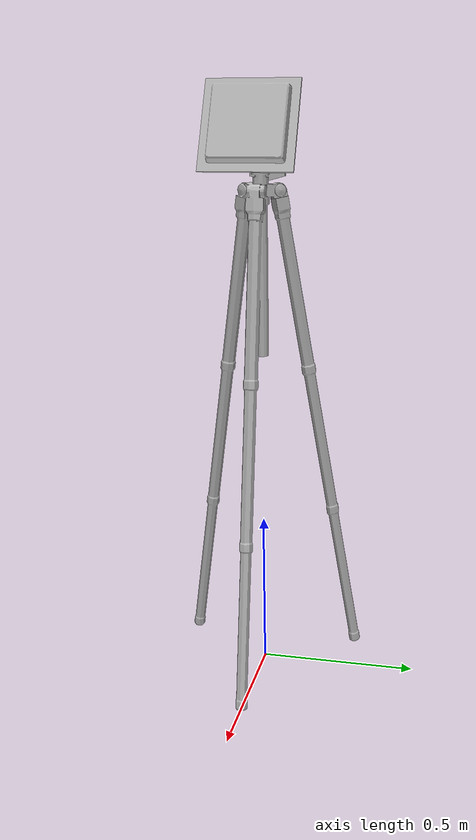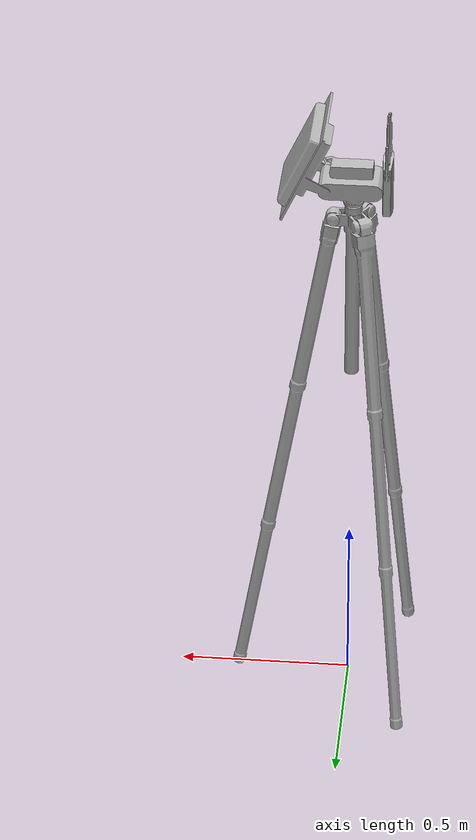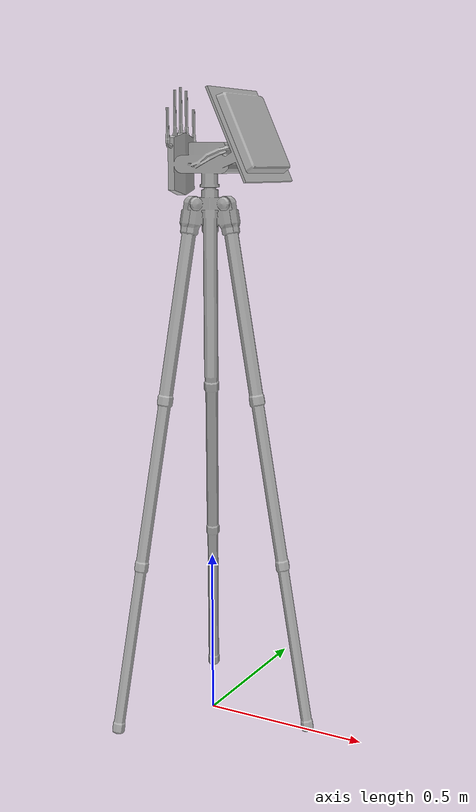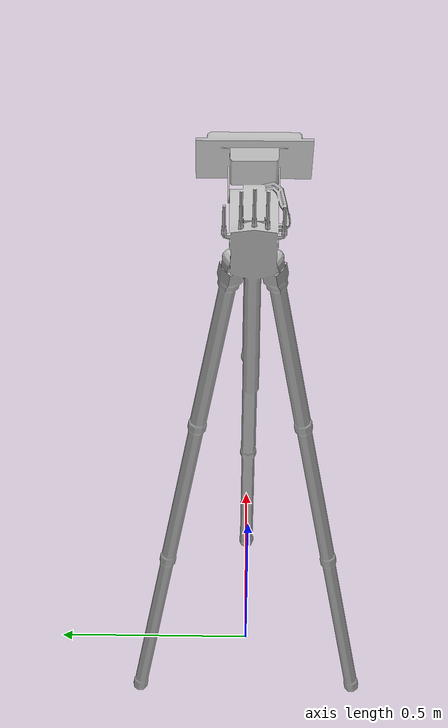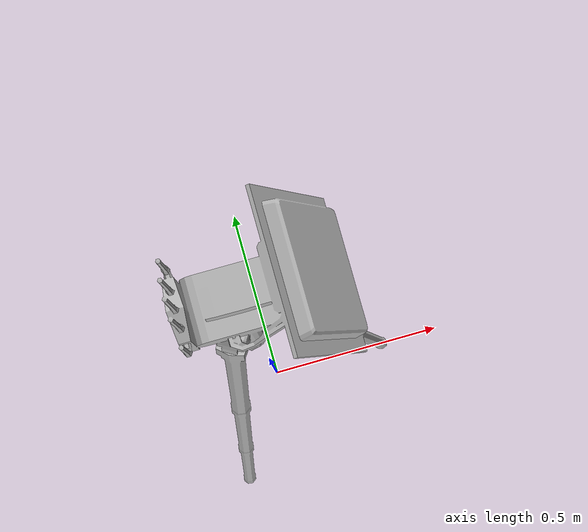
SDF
<?xml version="1.0"?>
<sdf version="1.6">
  <model name="antenna">
    <static>true</static>
    <link name="base_link">
      <visual name="visual">
        <pose>0 0 0 0 0 -1.5708</pose>
        <geometry>
           <mesh>
            <uri>model://antenna/meshes/antenna.dae</uri>
          </mesh>
        </geometry>
      </visual>
      <collision name="collision">
        <pose>0 0 0.95 0 0 0</pose>
        <geometry>
          <cylinder>
            <radius>0.35</radius>
            <length>1.9</length>
          </cylinder>
        </geometry>
      </collision>
    </link>
  </model>
</sdf>
